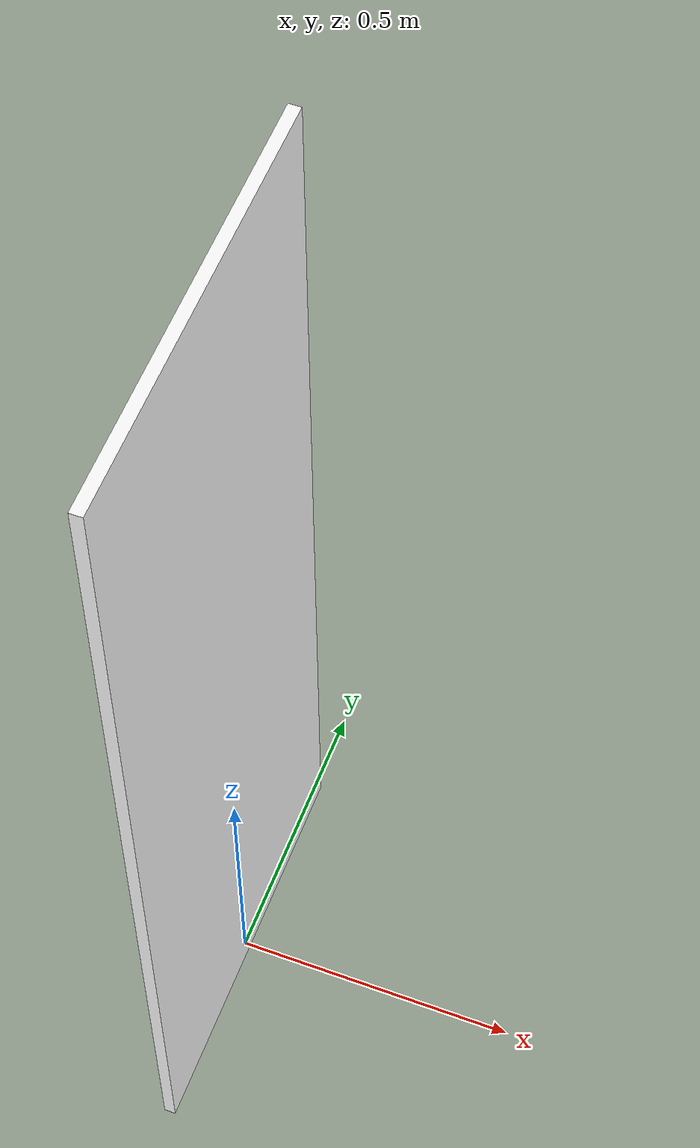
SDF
<?xml version="1.0" ?>
<sdf version="1.9">
  <model name="sjcu_person_board">
    <static>true</static>
    <link name="board">
      <pose>0 0 0.9 0 0 0</pose>                 <!-- 판 높이 1.8 m 의 절반 → 바닥에 딱 닿음 -->
      <visual name="photo">
        <geometry>
          <box><size>0.02 0.7 1.8</size></box>    <!-- 두께(x) 폭(y) 높이(z) [m] -->
        </geometry>
        <material>
          <ambient>1 1 1 1</ambient>
          <diffuse>1 1 1 1</diffuse>
          <specular>0 0 0 1</specular>
          <pbr>
            <metal>
              <albedo_map>model://sjcu_person_board/materials/textures/person.png</albedo_map>
              <roughness>1.0</roughness>
              <metalness>0.0</metalness>
            </metal>
          </pbr>
        </material>
      </visual>
      <collision name="collision">
        <geometry>
          <box><size>0.02 0.7 1.8</size></box>
        </geometry>
      </collision>
    </link>
  </model>
</sdf>
